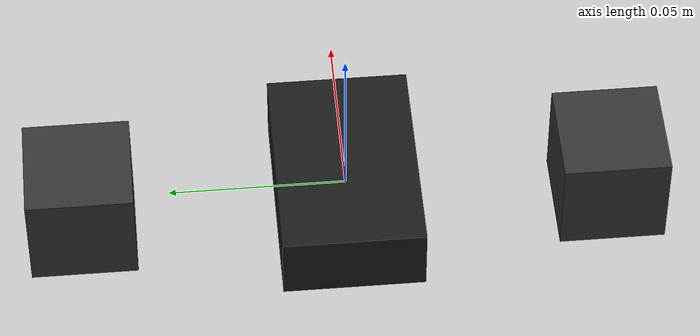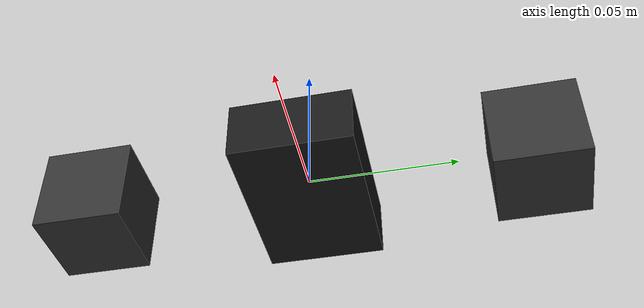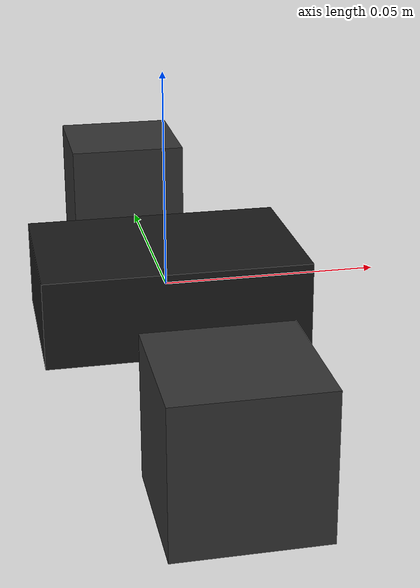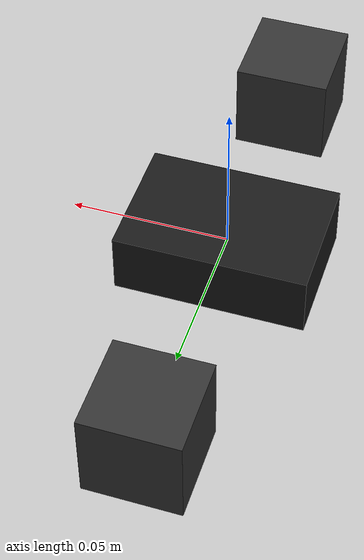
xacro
<?xml version="1.0"?>
<robot xmlns:xacro="http://www.ros.org/wiki/xacro" name="navcam_stereo">

  <gazebo>
    <static>true</static>
  </gazebo>

  <link name="navcam_rig_link">
    <inertial>
      <origin xyz="0 0 0" rpy="0 0 0"/>
      <mass value="0.05"/>
      <inertia ixx="5e-5" ixy="0" ixz="0" iyy="5e-5" iyz="0" izz="5e-5"/>
    </inertial>
    <visual>
      <origin xyz="0 0 0" rpy="0 0 0"/>
      <geometry>
        <box size="0.06 0.04 0.02"/>
      </geometry>
      <material name="navcam_body">
        <color rgba="0.1 0.1 0.1 1"/>
      </material>
    </visual>
    <collision>
      <origin xyz="0 0 0" rpy="0 0 0"/>
      <geometry>
        <box size="0.06 0.04 0.02"/>
      </geometry>
    </collision>
  </link>

  <link name="navcam_left_link">
    <inertial>
      <origin xyz="0 0 0" rpy="0 0 0"/>
      <mass value="0.02"/>
      <inertia ixx="1e-5" ixy="0" ixz="0" iyy="1e-5" iyz="0" izz="1e-5"/>
    </inertial>
    <visual>
      <origin xyz="0 0 0" rpy="0 0 0"/>
      <geometry>
        <box size="0.03 0.03 0.03"/>
      </geometry>
      <material name="navcam_left_body">
        <color rgba="0.2 0.2 0.2 1"/>
      </material>
    </visual>
    <collision>
      <origin xyz="0 0 0" rpy="0 0 0"/>
      <geometry>
        <box size="0.03 0.03 0.03"/>
      </geometry>
    </collision>
  </link>

  <joint name="navcam_left_joint" type="fixed">
    <parent link="navcam_rig_link"/>
    <child link="navcam_left_link"/>
    <origin xyz="0 0.075 0" rpy="0 0 0"/>
  </joint>

  <link name="navcam_left_optical_frame"/>

  <joint name="navcam_left_optical_joint" type="fixed">
    <parent link="navcam_left_link"/>
    <child link="navcam_left_optical_frame"/>
    <origin xyz="0 0 0" rpy="-1.5707963267949 0 -1.5707963267949"/>
  </joint>

  <link name="navcam_right_link">
    <inertial>
      <origin xyz="0 0 0" rpy="0 0 0"/>
      <mass value="0.02"/>
      <inertia ixx="1e-5" ixy="0" ixz="0" iyy="1e-5" iyz="0" izz="1e-5"/>
    </inertial>
    <visual>
      <origin xyz="0 0 0" rpy="0 0 0"/>
      <geometry>
        <box size="0.03 0.03 0.03"/>
      </geometry>
      <material name="navcam_right_body">
        <color rgba="0.2 0.2 0.2 1"/>
      </material>
    </visual>
    <collision>
      <origin xyz="0 0 0" rpy="0 0 0"/>
      <geometry>
        <box size="0.03 0.03 0.03"/>
      </geometry>
    </collision>
  </link>

  <joint name="navcam_right_joint" type="fixed">
    <parent link="navcam_rig_link"/>
    <child link="navcam_right_link"/>
    <origin xyz="0 -0.075 0" rpy="0 0 0"/>
  </joint>

  <link name="navcam_right_optical_frame"/>

  <joint name="navcam_right_optical_joint" type="fixed">
    <parent link="navcam_right_link"/>
    <child link="navcam_right_optical_frame"/>
    <origin xyz="0 0 0" rpy="-1.5707963267949 0 -1.5707963267949"/>
  </joint>

  <gazebo reference="navcam_left_link">
    <sensor type="camera" name="navcam_left_sensor">
      <always_on>true</always_on>
      <update_rate>5.0</update_rate>
      <visualize>false</visualize>
      <camera name="navcam_left_camera">
        <horizontal_fov>1.1344640137963142</horizontal_fov>
        <image>
          <width>1024</width>
          <height>1024</height>
          <format>L8</format>
        </image>
        <clip>
          <near>0.1</near>
          <far>100.0</far>
        </clip>
      </camera>
      <plugin name="navcam_left_controller" filename="libgazebo_ros_camera.so">
        <ros>
          <namespace>/navcam/left</namespace>
        </ros>
        <camera_name>navcam_left</camera_name>
        <frame_name>navcam_left_optical_frame</frame_name>
        <hack_baseline>0.0</hack_baseline>
      </plugin>
    </sensor>
  </gazebo>

  <gazebo reference="navcam_right_link">
    <sensor type="camera" name="navcam_right_sensor">
      <always_on>true</always_on>
      <update_rate>5.0</update_rate>
      <visualize>false</visualize>
      <camera name="navcam_right_camera">
        <horizontal_fov>1.1344640137963142</horizontal_fov>
        <image>
          <width>1024</width>
          <height>1024</height>
          <format>L8</format>
        </image>
        <clip>
          <near>0.1</near>
          <far>100.0</far>
        </clip>
      </camera>
      <plugin name="navcam_right_controller" filename="libgazebo_ros_camera.so">
        <ros>
          <namespace>/navcam/right</namespace>
        </ros>
        <camera_name>navcam_right</camera_name>
        <frame_name>navcam_right_optical_frame</frame_name>
        <hack_baseline>0.0</hack_baseline>
      </plugin>
    </sensor>
  </gazebo>

  <gazebo reference="navcam_left_link">
    <sensor type="depth" name="navcam_left_gt_depth_sensor">
      <always_on>true</always_on>
      <update_rate>5.0</update_rate>
      <visualize>false</visualize>
      <camera name="navcam_left_gt_depth_camera">
        <horizontal_fov>1.1344640137963142</horizontal_fov>
        <image>
          <width>1024</width>
          <height>1024</height>
        </image>
        <clip>
          <near>0.1</near>
          <far>100.0</far>
        </clip>
      </camera>
      <plugin name="navcam_left_gt_depth_controller" filename="libgazebo_ros_camera.so">
        <ros>
          <namespace>/navcam/left</namespace>
        </ros>
        <camera_name>navcam_left/gt_depth</camera_name>
        <frame_name>navcam_left_optical_frame</frame_name>
        <hack_baseline>0.0</hack_baseline>
        <min_depth>0.1</min_depth>
        <max_depth>100.0</max_depth>
      </plugin>
    </sensor>
  </gazebo>

  <gazebo reference="navcam_right_link">
    <sensor type="depth" name="navcam_right_gt_depth_sensor">
      <always_on>true</always_on>
      <update_rate>5.0</update_rate>
      <visualize>false</visualize>
      <camera name="navcam_right_gt_depth_camera">
        <horizontal_fov>1.1344640137963142</horizontal_fov>
        <image>
          <width>1024</width>
          <height>1024</height>
        </image>
        <clip>
          <near>0.1</near>
          <far>100.0</far>
        </clip>
      </camera>
      <plugin name="navcam_right_gt_depth_controller" filename="libgazebo_ros_camera.so">
        <ros>
          <namespace>/navcam/right</namespace>
        </ros>
        <camera_name>navcam_right/gt_depth</camera_name>
        <frame_name>navcam_right_optical_frame</frame_name>
        <hack_baseline>0.0</hack_baseline>
        <min_depth>0.1</min_depth>
        <max_depth>100.0</max_depth>
      </plugin>
    </sensor>
  </gazebo>

</robot>
